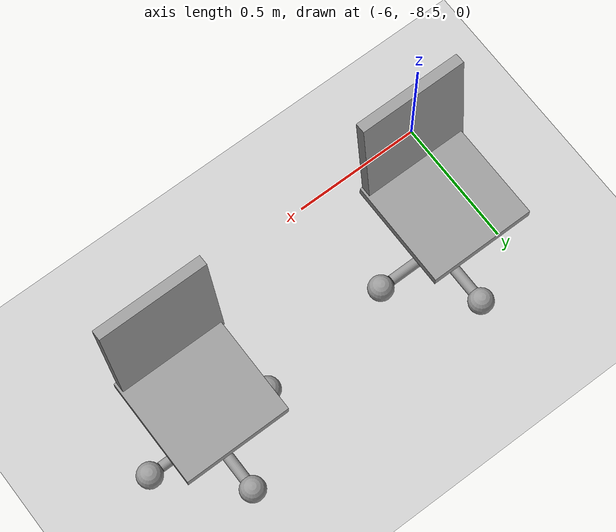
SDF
<sdf version="1.6">
 <world name="default">
  <model name="ground_plane">
   <static>1</static>
   <link name="link">
    <collision name="collision">
     <geometry><plane><normal>0 0 1</normal><size>100 100</size></plane></geometry>
     <surface><friction><ode><mu>100</mu><mu2>50</mu2></ode></friction></surface>
    </collision>
    <visual name="visual">
     <cast_shadows>0</cast_shadows>
     <geometry><plane><normal>0 0 1</normal><size>100 100</size></plane></geometry>
     <material>
      <script><uri>file://media/materials/scripts/gazebo.material</uri><name>Gazebo/Grey</name></script>
     </material>
    </visual>
   </link>
  </model>
  <model name="Sedia_0">
   <link name="link">
    <inertial>
     <mass>1</mass>
     <inertia><ixx>0.1</ixx><ixy>0</ixy><ixz>0</ixz><iyy>0.1</iyy><iyz>0</iyz><izz>0.1</izz></inertia>
     <pose>0 -0.05 0 0 -0 0</pose>
    </inertial>
    <pose>0 -0.05 0.04 0 -0 0</pose>
    <visual name="visual">
     <geometry><sphere><radius>0.0479725</radius></sphere></geometry>
     <material>
      <script><name>Gazebo/Grey</name><uri>file://media/materials/scripts/gazebo.material</uri></script>
      <shader type="vertex"><normal_map>__default__</normal_map></shader>
      <ambient>0.3 0.3 0.3 1</ambient>
      <diffuse>0.7 0.7 0.7 1</diffuse>
      <specular>0.01 0.01 0.01 1</specular>
      <emissive>0 0 0 1</emissive>
     </material>
    </visual>
    <collision name="collision">
     <geometry><sphere><radius>0.047973</radius></sphere></geometry>
     <surface>
      <friction>
       <ode><mu>1</mu><mu2>1</mu2><fdir1>0 0 0</fdir1><slip1>0</slip1><slip2>0</slip2></ode>
       <torsional>
        <coefficient>1</coefficient>
        <patch_radius>0</patch_radius>
        <surface_radius>0</surface_radius>
        <use_patch_radius>1</use_patch_radius>
        <ode><slip>0</slip></ode>
       </torsional>
      </friction>
      <bounce><restitution_coefficient>0</restitution_coefficient><threshold>1e+06</threshold></bounce>
      <contact>
       <collide_without_contact>0</collide_without_contact>
       <collide_without_contact_bitmask>1</collide_without_contact_bitmask>
       <collide_bitmask>1</collide_bitmask>
       <ode>
        <soft_cfm>0</soft_cfm>
        <soft_erp>0.2</soft_erp>
        <kp>1e+13</kp>
        <kd>1</kd>
        <max_vel>0.01</max_vel>
        <min_depth>0</min_depth>
       </ode>
       <bullet>
        <split_impulse>1</split_impulse>
        <split_impulse_penetration_threshold>-0.01</split_impulse_penetration_threshold>
        <soft_cfm>0</soft_cfm>
        <soft_erp>0.2</soft_erp>
        <kp>1e+13</kp>
        <kd>1</kd>
       </bullet>
      </contact>
     </surface>
    </collision>
   </link>
   <link name="link_0">
    <inertial>
     <mass>0.000595181</mass>
     <inertia>
      <ixx>8.34662e-06</ixx>
      <ixy>0</ixy>
      <ixz>0</ixz>
      <iyy>8.34662e-06</iyy>
      <iyz>0</iyz>
      <izz>1.11586e-07</izz>
     </inertia>
    </inertial>
    <pose>-0 0.2 0.2494 0 -0 0</pose>
    <visual name="visual">
     <geometry><cylinder><radius>0.0193636</radius><length>0.408851</length></cylinder></geometry>
     <material>
      <lighting>1</lighting>
      <script><uri>file://media/materials/scripts/gazebo.material</uri><name>Gazebo/Grey</name></script>
      <shader type="vertex"><normal_map>__default__</normal_map></shader>
      <ambient>0.3 0.3 0.3 1</ambient>
      <diffuse>0.7 0.7 0.7 1</diffuse>
      <specular>0.01 0.01 0.01 1</specular>
      <emissive>0 0 0 1</emissive>
     </material>
    </visual>
    <collision name="collision">
     <geometry><cylinder><radius>0.019364</radius><length>0.408851</length></cylinder></geometry>
     <surface>
      <friction>
       <ode><mu>1</mu><mu2>1</mu2><fdir1>0 0 0</fdir1><slip1>0</slip1><slip2>0</slip2></ode>
       <torsional>
        <coefficient>1</coefficient>
        <patch_radius>0</patch_radius>
        <surface_radius>0</surface_radius>
        <use_patch_radius>1</use_patch_radius>
        <ode><slip>0</slip></ode>
       </torsional>
      </friction>
      <bounce><restitution_coefficient>0</restitution_coefficient><threshold>1e+06</threshold></bounce>
      <contact>
       <collide_without_contact>0</collide_without_contact>
       <collide_without_contact_bitmask>1</collide_without_contact_bitmask>
       <collide_bitmask>1</collide_bitmask>
       <ode>
        <soft_cfm>0</soft_cfm>
        <soft_erp>0.2</soft_erp>
        <kp>1e+13</kp>
        <kd>1</kd>
        <max_vel>0.01</max_vel>
        <min_depth>0</min_depth>
       </ode>
       <bullet>
        <split_impulse>1</split_impulse>
        <split_impulse_penetration_threshold>-0.01</split_impulse_penetration_threshold>
        <soft_cfm>0</soft_cfm>
        <soft_erp>0.2</soft_erp>
        <kp>1e+13</kp>
        <kd>1</kd>
       </bullet>
      </contact>
     </surface>
    </collision>
   </link>
   <link name="link_0_clone">
    <inertial>
     <mass>0.000698061</mass>
     <inertia>
      <ixx>1.02332e-05</ixx>
      <ixy>0</ixy>
      <ixz>0</ixz>
      <iyy>1.02332e-05</iyy>
      <iyz>0</iyz>
      <izz>1.50251e-07</izz>
     </inertia>
    </inertial>
    <pose>0 0.2 0.04 -1.571 -0 0</pose>
    <visual name="visual">
     <geometry><cylinder><radius>0.0207471</radius><length>0.417878</length></cylinder></geometry>
     <material>
      <lighting>1</lighting>
      <script><uri>file://media/materials/scripts/gazebo.material</uri><name>Gazebo/Grey</name></script>
      <shader type="vertex"><normal_map>__default__</normal_map></shader>
      <ambient>0.3 0.3 0.3 1</ambient>
      <diffuse>0.7 0.7 0.7 1</diffuse>
      <specular>0.01 0.01 0.01 1</specular>
      <emissive>0 0 0 1</emissive>
     </material>
    </visual>
    <collision name="collision">
     <geometry><cylinder><radius>0.020748</radius><length>0.417878</length></cylinder></geometry>
     <surface>
      <friction>
       <ode><mu>1</mu><mu2>1</mu2><fdir1>0 0 0</fdir1><slip1>0</slip1><slip2>0</slip2></ode>
       <torsional>
        <coefficient>1</coefficient>
        <patch_radius>0</patch_radius>
        <surface_radius>0</surface_radius>
        <use_patch_radius>1</use_patch_radius>
        <ode><slip>0</slip></ode>
       </torsional>
      </friction>
      <bounce><restitution_coefficient>0</restitution_coefficient><threshold>1e+06</threshold></bounce>
      <contact>
       <collide_without_contact>0</collide_without_contact>
       <collide_without_contact_bitmask>1</collide_without_contact_bitmask>
       <collide_bitmask>1</collide_bitmask>
       <ode>
        <soft_cfm>0</soft_cfm>
        <soft_erp>0.2</soft_erp>
        <kp>1e+13</kp>
        <kd>1</kd>
        <max_vel>0.01</max_vel>
        <min_depth>0</min_depth>
       </ode>
       <bullet>
        <split_impulse>1</split_impulse>
        <split_impulse_penetration_threshold>-0.01</split_impulse_penetration_threshold>
        <soft_cfm>0</soft_cfm>
        <soft_erp>0.2</soft_erp>
        <kp>1e+13</kp>
        <kd>1</kd>
       </bullet>
      </contact>
     </surface>
    </collision>
   </link>
   <link name="link_0_clone_0">
    <inertial>
     <mass>0.00059327</mass>
     <inertia>
      <ixx>8.26633e-06</ixx>
      <ixy>0</ixy>
      <ixz>0</ixz>
      <iyy>8.26633e-06</iyy>
      <iyz>0</iyz>
      <izz>1.11228e-07</izz>
     </inertia>
    </inertial>
    <pose>0 0.2 0.04 0 -1.57059 0</pose>
    <visual name="visual">
     <geometry><cylinder><radius>0.0193636</radius><length>0.407525</length></cylinder></geometry>
     <material>
      <lighting>1</lighting>
      <script><uri>file://media/materials/scripts/gazebo.material</uri><name>Gazebo/Grey</name></script>
      <shader type="vertex"><normal_map>__default__</normal_map></shader>
      <ambient>0.3 0.3 0.3 1</ambient>
      <diffuse>0.7 0.7 0.7 1</diffuse>
      <specular>0.01 0.01 0.01 1</specular>
      <emissive>0 0 0 1</emissive>
     </material>
    </visual>
    <collision name="collision">
     <geometry><cylinder><radius>0.019364</radius><length>0.407525</length></cylinder></geometry>
     <surface>
      <friction>
       <ode><mu>1</mu><mu2>1</mu2><fdir1>0 0 0</fdir1><slip1>0</slip1><slip2>0</slip2></ode>
       <torsional>
        <coefficient>1</coefficient>
        <patch_radius>0</patch_radius>
        <surface_radius>0</surface_radius>
        <use_patch_radius>1</use_patch_radius>
        <ode><slip>0</slip></ode>
       </torsional>
      </friction>
      <bounce><restitution_coefficient>0</restitution_coefficient><threshold>1e+06</threshold></bounce>
      <contact>
       <collide_without_contact>0</collide_without_contact>
       <collide_without_contact_bitmask>1</collide_without_contact_bitmask>
       <collide_bitmask>1</collide_bitmask>
       <ode>
        <soft_cfm>0</soft_cfm>
        <soft_erp>0.2</soft_erp>
        <kp>1e+13</kp>
        <kd>1</kd>
        <max_vel>0.01</max_vel>
        <min_depth>0</min_depth>
       </ode>
       <bullet>
        <split_impulse>1</split_impulse>
        <split_impulse_penetration_threshold>-0.01</split_impulse_penetration_threshold>
        <soft_cfm>0</soft_cfm>
        <soft_erp>0.2</soft_erp>
        <kp>1e+13</kp>
        <kd>1</kd>
       </bullet>
      </contact>
     </surface>
    </collision>
   </link>
   <link name="link_1">
    <inertial>
     <mass>0.00616304</mass>
     <inertia>
      <ixx>8.379e-05</ixx>
      <ixy>0</ixy>
      <ixz>0</ixz>
      <iyy>8.148e-05</iyy>
      <iyz>0</iyz>
      <izz>0.00016374</izz>
     </inertia>
    </inertial>
    <pose>-0 0.2 0.48 0 -0 0</pose>
    <visual name="visual">
     <geometry><box><size>0.396445 0.402068 0.038566</size></box></geometry>
     <material>
      <lighting>1</lighting>
      <script><uri>file://media/materials/scripts/gazebo.material</uri><name>Gazebo/Grey</name></script>
      <shader type="vertex"><normal_map>__default__</normal_map></shader>
      <ambient>0.3 0.3 0.3 1</ambient>
      <diffuse>0.7 0.7 0.7 1</diffuse>
      <specular>0.01 0.01 0.01 1</specular>
      <emissive>0 0 0 1</emissive>
     </material>
    </visual>
    <collision name="collision">
     <geometry><box><size>0.396445 0.402068 0.038566</size></box></geometry>
     <surface>
      <friction>
       <ode><mu>1</mu><mu2>1</mu2><fdir1>0 0 0</fdir1><slip1>0</slip1><slip2>0</slip2></ode>
       <torsional>
        <coefficient>1</coefficient>
        <patch_radius>0</patch_radius>
        <surface_radius>0</surface_radius>
        <use_patch_radius>1</use_patch_radius>
        <ode><slip>0</slip></ode>
       </torsional>
      </friction>
      <bounce><restitution_coefficient>0</restitution_coefficient><threshold>1e+06</threshold></bounce>
      <contact>
       <collide_without_contact>0</collide_without_contact>
       <collide_without_contact_bitmask>1</collide_without_contact_bitmask>
       <collide_bitmask>1</collide_bitmask>
       <ode>
        <soft_cfm>0</soft_cfm>
        <soft_erp>0.2</soft_erp>
        <kp>1e+13</kp>
        <kd>1</kd>
        <max_vel>0.01</max_vel>
        <min_depth>0</min_depth>
       </ode>
       <bullet>
        <split_impulse>1</split_impulse>
        <split_impulse_penetration_threshold>-0.01</split_impulse_penetration_threshold>
        <soft_cfm>0</soft_cfm>
        <soft_erp>0.2</soft_erp>
        <kp>1e+13</kp>
        <kd>1</kd>
       </bullet>
      </contact>
     </surface>
    </collision>
   </link>
   <link name="link_1_clone">
    <inertial>
     <mass>0.0072018</mass>
     <inertia>
      <ixx>0.000133376</ixx>
      <ixy>0</ixy>
      <ixz>0</ixz>
      <iyy>9.52174e-05</iyy>
      <iyz>0</iyz>
      <izz>0.000226808</izz>
     </inertia>
    </inertial>
    <pose>-0.008803 -0.002064 0.701044 1.67698 -0 0</pose>
    <visual name="visual">
     <geometry><box><size>0.396445 0.46984 0.038566</size></box></geometry>
     <material>
      <lighting>1</lighting>
      <script><uri>file://media/materials/scripts/gazebo.material</uri><name>Gazebo/Grey</name></script>
      <shader type="vertex"><normal_map>__default__</normal_map></shader>
      <ambient>0.3 0.3 0.3 1</ambient>
      <diffuse>0.7 0.7 0.7 1</diffuse>
      <specular>0.01 0.01 0.01 1</specular>
      <emissive>0 0 0 1</emissive>
     </material>
    </visual>
    <collision name="collision">
     <geometry><box><size>0.396445 0.46984 0.038566</size></box></geometry>
     <surface>
      <friction>
       <ode><mu>1</mu><mu2>1</mu2><fdir1>0 0 0</fdir1><slip1>0</slip1><slip2>0</slip2></ode>
       <torsional>
        <coefficient>1</coefficient>
        <patch_radius>0</patch_radius>
        <surface_radius>0</surface_radius>
        <use_patch_radius>1</use_patch_radius>
        <ode><slip>0</slip></ode>
       </torsional>
      </friction>
      <bounce><restitution_coefficient>0</restitution_coefficient><threshold>1e+06</threshold></bounce>
      <contact>
       <collide_without_contact>0</collide_without_contact>
       <collide_without_contact_bitmask>1</collide_without_contact_bitmask>
       <collide_bitmask>1</collide_bitmask>
       <ode>
        <soft_cfm>0</soft_cfm>
        <soft_erp>0.2</soft_erp>
        <kp>1e+13</kp>
        <kd>1</kd>
        <max_vel>0.01</max_vel>
        <min_depth>0</min_depth>
       </ode>
       <bullet>
        <split_impulse>1</split_impulse>
        <split_impulse_penetration_threshold>-0.01</split_impulse_penetration_threshold>
        <soft_cfm>0</soft_cfm>
        <soft_erp>0.2</soft_erp>
        <kp>1e+13</kp>
        <kd>1</kd>
       </bullet>
      </contact>
     </surface>
    </collision>
   </link>
   <link name="link_clone">
    <inertial>
     <mass>1</mass>
     <inertia><ixx>0.1</ixx><ixy>0</ixy><ixz>0</ixz><iyy>0.1</iyy><iyz>0</iyz><izz>0.1</izz></inertia>
     <pose>0 0 0.04 0 -0 0</pose>
    </inertial>
    <pose>0.25 0.2 0.04 0 -0 0</pose>
    <visual name="visual">
     <geometry><sphere><radius>0.0479725</radius></sphere></geometry>
     <material>
      <script><name>Gazebo/Grey</name><uri>file://media/materials/scripts/gazebo.material</uri></script>
      <shader type="vertex"><normal_map>__default__</normal_map></shader>
      <ambient>0.3 0.3 0.3 1</ambient>
      <diffuse>0.7 0.7 0.7 1</diffuse>
      <specular>0.01 0.01 0.01 1</specular>
      <emissive>0 0 0 1</emissive>
     </material>
    </visual>
    <collision name="collision">
     <geometry><sphere><radius>0.047973</radius></sphere></geometry>
     <surface>
      <friction>
       <ode><mu>1</mu><mu2>1</mu2><fdir1>0 0 0</fdir1><slip1>0</slip1><slip2>0</slip2></ode>
       <torsional>
        <coefficient>1</coefficient>
        <patch_radius>0</patch_radius>
        <surface_radius>0</surface_radius>
        <use_patch_radius>1</use_patch_radius>
        <ode><slip>0</slip></ode>
       </torsional>
      </friction>
      <bounce><restitution_coefficient>0</restitution_coefficient><threshold>1e+06</threshold></bounce>
      <contact>
       <collide_without_contact>0</collide_without_contact>
       <collide_without_contact_bitmask>1</collide_without_contact_bitmask>
       <collide_bitmask>1</collide_bitmask>
       <ode>
        <soft_cfm>0</soft_cfm>
        <soft_erp>0.2</soft_erp>
        <kp>1e+13</kp>
        <kd>1</kd>
        <max_vel>0.01</max_vel>
        <min_depth>0</min_depth>
       </ode>
       <bullet>
        <split_impulse>1</split_impulse>
        <split_impulse_penetration_threshold>-0.01</split_impulse_penetration_threshold>
        <soft_cfm>0</soft_cfm>
        <soft_erp>0.2</soft_erp>
        <kp>1e+13</kp>
        <kd>1</kd>
       </bullet>
      </contact>
     </surface>
    </collision>
   </link>
   <link name="link_clone_0">
    <inertial>
     <mass>1</mass>
     <inertia><ixx>0.1</ixx><ixy>0</ixy><ixz>0</ixz><iyy>0.1</iyy><iyz>0</iyz><izz>0.1</izz></inertia>
    </inertial>
    <pose>-0 0.45 0.04 0 -0 0</pose>
    <visual name="visual">
     <geometry><sphere><radius>0.0479725</radius></sphere></geometry>
     <material>
      <script><name>Gazebo/Grey</name><uri>file://media/materials/scripts/gazebo.material</uri></script>
      <shader type="vertex"><normal_map>__default__</normal_map></shader>
      <ambient>0.3 0.3 0.3 1</ambient>
      <diffuse>0.7 0.7 0.7 1</diffuse>
      <specular>0.01 0.01 0.01 1</specular>
      <emissive>0 0 0 1</emissive>
     </material>
    </visual>
    <collision name="collision">
     <geometry><sphere><radius>0.047973</radius></sphere></geometry>
     <surface>
      <friction>
       <ode><mu>1</mu><mu2>1</mu2><fdir1>0 0 0</fdir1><slip1>0</slip1><slip2>0</slip2></ode>
       <torsional>
        <coefficient>1</coefficient>
        <patch_radius>0</patch_radius>
        <surface_radius>0</surface_radius>
        <use_patch_radius>1</use_patch_radius>
        <ode><slip>0</slip></ode>
       </torsional>
      </friction>
      <bounce><restitution_coefficient>0</restitution_coefficient><threshold>1e+06</threshold></bounce>
      <contact>
       <collide_without_contact>0</collide_without_contact>
       <collide_without_contact_bitmask>1</collide_without_contact_bitmask>
       <collide_bitmask>1</collide_bitmask>
       <ode>
        <soft_cfm>0</soft_cfm>
        <soft_erp>0.2</soft_erp>
        <kp>1e+13</kp>
        <kd>1</kd>
        <max_vel>0.01</max_vel>
        <min_depth>0</min_depth>
       </ode>
       <bullet>
        <split_impulse>1</split_impulse>
        <split_impulse_penetration_threshold>-0.01</split_impulse_penetration_threshold>
        <soft_cfm>0</soft_cfm>
        <soft_erp>0.2</soft_erp>
        <kp>1e+13</kp>
        <kd>1</kd>
       </bullet>
      </contact>
     </surface>
    </collision>
   </link>
   <link name="link_clone_1">
    <inertial>
     <mass>1</mass>
     <inertia><ixx>0.1</ixx><ixy>0</ixy><ixz>0</ixz><iyy>0.1</iyy><iyz>0</iyz><izz>0.1</izz></inertia>
    </inertial>
    <pose>-0.25 0.2 0.04 0 -0 0</pose>
    <visual name="visual">
     <geometry><sphere><radius>0.0479725</radius></sphere></geometry>
     <material>
      <script><name>Gazebo/Grey</name><uri>file://media/materials/scripts/gazebo.material</uri></script>
      <shader type="vertex"><normal_map>__default__</normal_map></shader>
      <ambient>0.3 0.3 0.3 1</ambient>
      <diffuse>0.7 0.7 0.7 1</diffuse>
      <specular>0.01 0.01 0.01 1</specular>
      <emissive>0 0 0 1</emissive>
     </material>
    </visual>
    <collision name="collision">
     <geometry><sphere><radius>0.047973</radius></sphere></geometry>
     <surface>
      <friction>
       <ode><mu>1</mu><mu2>1</mu2><fdir1>0 0 0</fdir1><slip1>0</slip1><slip2>0</slip2></ode>
       <torsional>
        <coefficient>1</coefficient>
        <patch_radius>0</patch_radius>
        <surface_radius>0</surface_radius>
        <use_patch_radius>1</use_patch_radius>
        <ode><slip>0</slip></ode>
       </torsional>
      </friction>
      <bounce><restitution_coefficient>0</restitution_coefficient><threshold>1e+06</threshold></bounce>
      <contact>
       <collide_without_contact>0</collide_without_contact>
       <collide_without_contact_bitmask>1</collide_without_contact_bitmask>
       <collide_bitmask>1</collide_bitmask>
       <ode>
        <soft_cfm>0</soft_cfm>
        <soft_erp>0.2</soft_erp>
        <kp>1e+13</kp>
        <kd>1</kd>
        <max_vel>0.01</max_vel>
        <min_depth>0</min_depth>
       </ode>
       <bullet>
        <split_impulse>1</split_impulse>
        <split_impulse_penetration_threshold>-0.01</split_impulse_penetration_threshold>
        <soft_cfm>0</soft_cfm>
        <soft_erp>0.2</soft_erp>
        <kp>1e+13</kp>
        <kd>1</kd>
       </bullet>
      </contact>
     </surface>
    </collision>
   </link>
   <joint name="link_0_clone_0_JOINT_1" type="fixed">
    <parent>link_0_clone_0</parent>
    <child>link_clone</child>
    <physics>
     <ode><limit><cfm>0</cfm><erp>0.2</erp></limit><suspension><cfm>0</cfm><erp>0.2</erp></suspension></ode>
    </physics>
   </joint>
   <joint name="link_0_clone_0_JOINT_2" type="fixed">
    <parent>link_0_clone_0</parent>
    <child>link_clone_1</child>
    <physics>
     <ode><limit><cfm>0</cfm><erp>0.2</erp></limit><suspension><cfm>0</cfm><erp>0.2</erp></suspension></ode>
    </physics>
   </joint>
   <joint name="link_0_clone_JOINT_3" type="fixed">
    <parent>link_0_clone</parent>
    <child>link_clone_0</child>
    <physics>
     <ode><limit><cfm>0</cfm><erp>0.2</erp></limit><suspension><cfm>0</cfm><erp>0.2</erp></suspension></ode>
    </physics>
   </joint>
   <joint name="link_0_clone_JOINT_4" type="fixed">
    <parent>link_0_clone</parent>
    <child>link</child>
    <physics>
     <ode><limit><cfm>0</cfm><erp>0.2</erp></limit><suspension><cfm>0</cfm><erp>0.2</erp></suspension></ode>
    </physics>
   </joint>
   <joint name="link_1_JOINT_0" type="fixed">
    <parent>link_1</parent>
    <child>link_1_clone</child>
    <physics>
     <ode><limit><cfm>0</cfm><erp>0.2</erp></limit><suspension><cfm>0</cfm><erp>0.2</erp></suspension></ode>
    </physics>
   </joint>
   <joint name="link_1_JOINT_4" type="fixed">
    <parent>link_1</parent>
    <child>link_0</child>
    <physics>
     <ode><limit><cfm>0</cfm><erp>0.2</erp></limit><suspension><cfm>0</cfm><erp>0.2</erp></suspension></ode>
    </physics>
   </joint>
   <joint name="link_JOINT_3" type="fixed">
    <parent>link</parent>
    <child>link_0</child>
    <physics>
     <ode><limit><cfm>0</cfm><erp>0.2</erp></limit><suspension><cfm>0</cfm><erp>0.2</erp></suspension></ode>
    </physics>
   </joint>
   <joint name="link_clone_0_JOINT_0" type="fixed">
    <parent>link_clone_0</parent>
    <child>link_0_LINK_FRAME_VISUAL___Y_AXIS</child>
    <physics>
     <ode><limit><cfm>0</cfm><erp>0.2</erp></limit><suspension><cfm>0</cfm><erp>0.2</erp></suspension></ode>
    </physics>
   </joint>
   <joint name="link_clone_1_JOINT_2" type="fixed">
    <parent>link_clone_1</parent>
    <child>link_0</child>
    <physics>
     <ode><limit><cfm>0</cfm><erp>0.2</erp></limit><suspension><cfm>0</cfm><erp>0.2</erp></suspension></ode>
    </physics>
   </joint>
   <joint name="link_clone_JOINT_1" type="fixed">
    <parent>link_clone</parent>
    <child>link_0</child>
    <physics>
     <ode><limit><cfm>0</cfm><erp>0.2</erp></limit><suspension><cfm>0</cfm><erp>0.2</erp></suspension></ode>
    </physics>
   </joint>
   <static>0</static>
   <pose>-5.78209 -8.28039 0.007985 0.000343 5e-06 -1e-06</pose>
  </model>
  <model name="Sedia_1">
   <link name="link">
    <inertial>
     <mass>1</mass>
     <inertia><ixx>0.1</ixx><ixy>0</ixy><ixz>0</ixz><iyy>0.1</iyy><iyz>0</iyz><izz>0.1</izz></inertia>
     <pose>0 -0.05 0 0 -0 0</pose>
    </inertial>
    <pose>0 -0.05 0.04 0 -0 0</pose>
    <visual name="visual">
     <geometry><sphere><radius>0.0479725</radius></sphere></geometry>
     <material>
      <script><name>Gazebo/Grey</name><uri>file://media/materials/scripts/gazebo.material</uri></script>
      <shader type="vertex"><normal_map>__default__</normal_map></shader>
      <ambient>0.3 0.3 0.3 1</ambient>
      <diffuse>0.7 0.7 0.7 1</diffuse>
      <specular>0.01 0.01 0.01 1</specular>
      <emissive>0 0 0 1</emissive>
     </material>
    </visual>
    <collision name="collision">
     <geometry><sphere><radius>0.047973</radius></sphere></geometry>
     <surface>
      <friction>
       <ode><mu>1</mu><mu2>1</mu2><fdir1>0 0 0</fdir1><slip1>0</slip1><slip2>0</slip2></ode>
       <torsional>
        <coefficient>1</coefficient>
        <patch_radius>0</patch_radius>
        <surface_radius>0</surface_radius>
        <use_patch_radius>1</use_patch_radius>
        <ode><slip>0</slip></ode>
       </torsional>
      </friction>
      <bounce><restitution_coefficient>0</restitution_coefficient><threshold>1e+06</threshold></bounce>
      <contact>
       <collide_without_contact>0</collide_without_contact>
       <collide_without_contact_bitmask>1</collide_without_contact_bitmask>
       <collide_bitmask>1</collide_bitmask>
       <ode>
        <soft_cfm>0</soft_cfm>
        <soft_erp>0.2</soft_erp>
        <kp>1e+13</kp>
        <kd>1</kd>
        <max_vel>0.01</max_vel>
        <min_depth>0</min_depth>
       </ode>
       <bullet>
        <split_impulse>1</split_impulse>
        <split_impulse_penetration_threshold>-0.01</split_impulse_penetration_threshold>
        <soft_cfm>0</soft_cfm>
        <soft_erp>0.2</soft_erp>
        <kp>1e+13</kp>
        <kd>1</kd>
       </bullet>
      </contact>
     </surface>
    </collision>
   </link>
   <link name="link_0">
    <inertial>
     <mass>0.000595181</mass>
     <inertia>
      <ixx>8.34662e-06</ixx>
      <ixy>0</ixy>
      <ixz>0</ixz>
      <iyy>8.34662e-06</iyy>
      <iyz>0</iyz>
      <izz>1.11586e-07</izz>
     </inertia>
    </inertial>
    <pose>-0 0.2 0.2494 0 -0 0</pose>
    <visual name="visual">
     <geometry><cylinder><radius>0.0193636</radius><length>0.408851</length></cylinder></geometry>
     <material>
      <lighting>1</lighting>
      <script><uri>file://media/materials/scripts/gazebo.material</uri><name>Gazebo/Grey</name></script>
      <shader type="vertex"><normal_map>__default__</normal_map></shader>
      <ambient>0.3 0.3 0.3 1</ambient>
      <diffuse>0.7 0.7 0.7 1</diffuse>
      <specular>0.01 0.01 0.01 1</specular>
      <emissive>0 0 0 1</emissive>
     </material>
    </visual>
    <collision name="collision">
     <geometry><cylinder><radius>0.019364</radius><length>0.408851</length></cylinder></geometry>
     <surface>
      <friction>
       <ode><mu>1</mu><mu2>1</mu2><fdir1>0 0 0</fdir1><slip1>0</slip1><slip2>0</slip2></ode>
       <torsional>
        <coefficient>1</coefficient>
        <patch_radius>0</patch_radius>
        <surface_radius>0</surface_radius>
        <use_patch_radius>1</use_patch_radius>
        <ode><slip>0</slip></ode>
       </torsional>
      </friction>
      <bounce><restitution_coefficient>0</restitution_coefficient><threshold>1e+06</threshold></bounce>
      <contact>
       <collide_without_contact>0</collide_without_contact>
       <collide_without_contact_bitmask>1</collide_without_contact_bitmask>
       <collide_bitmask>1</collide_bitmask>
       <ode>
        <soft_cfm>0</soft_cfm>
        <soft_erp>0.2</soft_erp>
        <kp>1e+13</kp>
        <kd>1</kd>
        <max_vel>0.01</max_vel>
        <min_depth>0</min_depth>
       </ode>
       <bullet>
        <split_impulse>1</split_impulse>
        <split_impulse_penetration_threshold>-0.01</split_impulse_penetration_threshold>
        <soft_cfm>0</soft_cfm>
        <soft_erp>0.2</soft_erp>
        <kp>1e+13</kp>
        <kd>1</kd>
       </bullet>
      </contact>
     </surface>
    </collision>
   </link>
   <link name="link_0_clone">
    <inertial>
     <mass>0.000698061</mass>
     <inertia>
      <ixx>1.02332e-05</ixx>
      <ixy>0</ixy>
      <ixz>0</ixz>
      <iyy>1.02332e-05</iyy>
      <iyz>0</iyz>
      <izz>1.50251e-07</izz>
     </inertia>
    </inertial>
    <pose>0 0.2 0.04 -1.571 -0 0</pose>
    <visual name="visual">
     <geometry><cylinder><radius>0.0207471</radius><length>0.417878</length></cylinder></geometry>
     <material>
      <lighting>1</lighting>
      <script><uri>file://media/materials/scripts/gazebo.material</uri><name>Gazebo/Grey</name></script>
      <shader type="vertex"><normal_map>__default__</normal_map></shader>
      <ambient>0.3 0.3 0.3 1</ambient>
      <diffuse>0.7 0.7 0.7 1</diffuse>
      <specular>0.01 0.01 0.01 1</specular>
      <emissive>0 0 0 1</emissive>
     </material>
    </visual>
    <collision name="collision">
     <geometry><cylinder><radius>0.020748</radius><length>0.417878</length></cylinder></geometry>
     <surface>
      <friction>
       <ode><mu>1</mu><mu2>1</mu2><fdir1>0 0 0</fdir1><slip1>0</slip1><slip2>0</slip2></ode>
       <torsional>
        <coefficient>1</coefficient>
        <patch_radius>0</patch_radius>
        <surface_radius>0</surface_radius>
        <use_patch_radius>1</use_patch_radius>
        <ode><slip>0</slip></ode>
       </torsional>
      </friction>
      <bounce><restitution_coefficient>0</restitution_coefficient><threshold>1e+06</threshold></bounce>
      <contact>
       <collide_without_contact>0</collide_without_contact>
       <collide_without_contact_bitmask>1</collide_without_contact_bitmask>
       <collide_bitmask>1</collide_bitmask>
       <ode>
        <soft_cfm>0</soft_cfm>
        <soft_erp>0.2</soft_erp>
        <kp>1e+13</kp>
        <kd>1</kd>
        <max_vel>0.01</max_vel>
        <min_depth>0</min_depth>
       </ode>
       <bullet>
        <split_impulse>1</split_impulse>
        <split_impulse_penetration_threshold>-0.01</split_impulse_penetration_threshold>
        <soft_cfm>0</soft_cfm>
        <soft_erp>0.2</soft_erp>
        <kp>1e+13</kp>
        <kd>1</kd>
       </bullet>
      </contact>
     </surface>
    </collision>
   </link>
   <link name="link_0_clone_0">
    <inertial>
     <mass>0.00059327</mass>
     <inertia>
      <ixx>8.26633e-06</ixx>
      <ixy>0</ixy>
      <ixz>0</ixz>
      <iyy>8.26633e-06</iyy>
      <iyz>0</iyz>
      <izz>1.11228e-07</izz>
     </inertia>
    </inertial>
    <pose>0 0.2 0.04 0 -1.57059 0</pose>
    <visual name="visual">
     <geometry><cylinder><radius>0.0193636</radius><length>0.407525</length></cylinder></geometry>
     <material>
      <lighting>1</lighting>
      <script><uri>file://media/materials/scripts/gazebo.material</uri><name>Gazebo/Grey</name></script>
      <shader type="vertex"><normal_map>__default__</normal_map></shader>
      <ambient>0.3 0.3 0.3 1</ambient>
      <diffuse>0.7 0.7 0.7 1</diffuse>
      <specular>0.01 0.01 0.01 1</specular>
      <emissive>0 0 0 1</emissive>
     </material>
    </visual>
    <collision name="collision">
     <geometry><cylinder><radius>0.019364</radius><length>0.407525</length></cylinder></geometry>
     <surface>
      <friction>
       <ode><mu>1</mu><mu2>1</mu2><fdir1>0 0 0</fdir1><slip1>0</slip1><slip2>0</slip2></ode>
       <torsional>
        <coefficient>1</coefficient>
        <patch_radius>0</patch_radius>
        <surface_radius>0</surface_radius>
        <use_patch_radius>1</use_patch_radius>
        <ode><slip>0</slip></ode>
       </torsional>
      </friction>
      <bounce><restitution_coefficient>0</restitution_coefficient><threshold>1e+06</threshold></bounce>
      <contact>
       <collide_without_contact>0</collide_without_contact>
       <collide_without_contact_bitmask>1</collide_without_contact_bitmask>
       <collide_bitmask>1</collide_bitmask>
       <ode>
        <soft_cfm>0</soft_cfm>
        <soft_erp>0.2</soft_erp>
        <kp>1e+13</kp>
        <kd>1</kd>
        <max_vel>0.01</max_vel>
        <min_depth>0</min_depth>
       </ode>
       <bullet>
        <split_impulse>1</split_impulse>
        <split_impulse_penetration_threshold>-0.01</split_impulse_penetration_threshold>
        <soft_cfm>0</soft_cfm>
        <soft_erp>0.2</soft_erp>
        <kp>1e+13</kp>
        <kd>1</kd>
       </bullet>
      </contact>
     </surface>
    </collision>
   </link>
   <link name="link_1">
    <inertial>
     <mass>0.00616304</mass>
     <inertia>
      <ixx>8.379e-05</ixx>
      <ixy>0</ixy>
      <ixz>0</ixz>
      <iyy>8.148e-05</iyy>
      <iyz>0</iyz>
      <izz>0.00016374</izz>
     </inertia>
    </inertial>
    <pose>-0 0.2 0.48 0 -0 0</pose>
    <visual name="visual">
     <geometry><box><size>0.396445 0.402068 0.038566</size></box></geometry>
     <material>
      <lighting>1</lighting>
      <script><uri>file://media/materials/scripts/gazebo.material</uri><name>Gazebo/Grey</name></script>
      <shader type="vertex"><normal_map>__default__</normal_map></shader>
      <ambient>0.3 0.3 0.3 1</ambient>
      <diffuse>0.7 0.7 0.7 1</diffuse>
      <specular>0.01 0.01 0.01 1</specular>
      <emissive>0 0 0 1</emissive>
     </material>
    </visual>
    <collision name="collision">
     <geometry><box><size>0.396445 0.402068 0.038566</size></box></geometry>
     <surface>
      <friction>
       <ode><mu>1</mu><mu2>1</mu2><fdir1>0 0 0</fdir1><slip1>0</slip1><slip2>0</slip2></ode>
       <torsional>
        <coefficient>1</coefficient>
        <patch_radius>0</patch_radius>
        <surface_radius>0</surface_radius>
        <use_patch_radius>1</use_patch_radius>
        <ode><slip>0</slip></ode>
       </torsional>
      </friction>
      <bounce><restitution_coefficient>0</restitution_coefficient><threshold>1e+06</threshold></bounce>
      <contact>
       <collide_without_contact>0</collide_without_contact>
       <collide_without_contact_bitmask>1</collide_without_contact_bitmask>
       <collide_bitmask>1</collide_bitmask>
       <ode>
        <soft_cfm>0</soft_cfm>
        <soft_erp>0.2</soft_erp>
        <kp>1e+13</kp>
        <kd>1</kd>
        <max_vel>0.01</max_vel>
        <min_depth>0</min_depth>
       </ode>
       <bullet>
        <split_impulse>1</split_impulse>
        <split_impulse_penetration_threshold>-0.01</split_impulse_penetration_threshold>
        <soft_cfm>0</soft_cfm>
        <soft_erp>0.2</soft_erp>
        <kp>1e+13</kp>
        <kd>1</kd>
       </bullet>
      </contact>
     </surface>
    </collision>
   </link>
   <link name="link_1_clone">
    <inertial>
     <mass>0.0072018</mass>
     <inertia>
      <ixx>0.000133376</ixx>
      <ixy>0</ixy>
      <ixz>0</ixz>
      <iyy>9.52174e-05</iyy>
      <iyz>0</iyz>
      <izz>0.000226808</izz>
     </inertia>
    </inertial>
    <pose>-0.008803 -0.002064 0.701044 1.67698 -0 0</pose>
    <visual name="visual">
     <geometry><box><size>0.396445 0.46984 0.038566</size></box></geometry>
     <material>
      <lighting>1</lighting>
      <script><uri>file://media/materials/scripts/gazebo.material</uri><name>Gazebo/Grey</name></script>
      <shader type="vertex"><normal_map>__default__</normal_map></shader>
      <ambient>0.3 0.3 0.3 1</ambient>
      <diffuse>0.7 0.7 0.7 1</diffuse>
      <specular>0.01 0.01 0.01 1</specular>
      <emissive>0 0 0 1</emissive>
     </material>
    </visual>
    <collision name="collision">
     <geometry><box><size>0.396445 0.46984 0.038566</size></box></geometry>
     <surface>
      <friction>
       <ode><mu>1</mu><mu2>1</mu2><fdir1>0 0 0</fdir1><slip1>0</slip1><slip2>0</slip2></ode>
       <torsional>
        <coefficient>1</coefficient>
        <patch_radius>0</patch_radius>
        <surface_radius>0</surface_radius>
        <use_patch_radius>1</use_patch_radius>
        <ode><slip>0</slip></ode>
       </torsional>
      </friction>
      <bounce><restitution_coefficient>0</restitution_coefficient><threshold>1e+06</threshold></bounce>
      <contact>
       <collide_without_contact>0</collide_without_contact>
       <collide_without_contact_bitmask>1</collide_without_contact_bitmask>
       <collide_bitmask>1</collide_bitmask>
       <ode>
        <soft_cfm>0</soft_cfm>
        <soft_erp>0.2</soft_erp>
        <kp>1e+13</kp>
        <kd>1</kd>
        <max_vel>0.01</max_vel>
        <min_depth>0</min_depth>
       </ode>
       <bullet>
        <split_impulse>1</split_impulse>
        <split_impulse_penetration_threshold>-0.01</split_impulse_penetration_threshold>
        <soft_cfm>0</soft_cfm>
        <soft_erp>0.2</soft_erp>
        <kp>1e+13</kp>
        <kd>1</kd>
       </bullet>
      </contact>
     </surface>
    </collision>
   </link>
   <link name="link_clone">
    <inertial>
     <mass>1</mass>
     <inertia><ixx>0.1</ixx><ixy>0</ixy><ixz>0</ixz><iyy>0.1</iyy><iyz>0</iyz><izz>0.1</izz></inertia>
     <pose>0 0 0.04 0 -0 0</pose>
    </inertial>
    <pose>0.25 0.2 0.04 0 -0 0</pose>
    <visual name="visual">
     <geometry><sphere><radius>0.0479725</radius></sphere></geometry>
     <material>
      <script><name>Gazebo/Grey</name><uri>file://media/materials/scripts/gazebo.material</uri></script>
      <shader type="vertex"><normal_map>__default__</normal_map></shader>
      <ambient>0.3 0.3 0.3 1</ambient>
      <diffuse>0.7 0.7 0.7 1</diffuse>
      <specular>0.01 0.01 0.01 1</specular>
      <emissive>0 0 0 1</emissive>
     </material>
    </visual>
    <collision name="collision">
     <geometry><sphere><radius>0.047973</radius></sphere></geometry>
     <surface>
      <friction>
       <ode><mu>1</mu><mu2>1</mu2><fdir1>0 0 0</fdir1><slip1>0</slip1><slip2>0</slip2></ode>
       <torsional>
        <coefficient>1</coefficient>
        <patch_radius>0</patch_radius>
        <surface_radius>0</surface_radius>
        <use_patch_radius>1</use_patch_radius>
        <ode><slip>0</slip></ode>
       </torsional>
      </friction>
      <bounce><restitution_coefficient>0</restitution_coefficient><threshold>1e+06</threshold></bounce>
      <contact>
       <collide_without_contact>0</collide_without_contact>
       <collide_without_contact_bitmask>1</collide_without_contact_bitmask>
       <collide_bitmask>1</collide_bitmask>
       <ode>
        <soft_cfm>0</soft_cfm>
        <soft_erp>0.2</soft_erp>
        <kp>1e+13</kp>
        <kd>1</kd>
        <max_vel>0.01</max_vel>
        <min_depth>0</min_depth>
       </ode>
       <bullet>
        <split_impulse>1</split_impulse>
        <split_impulse_penetration_threshold>-0.01</split_impulse_penetration_threshold>
        <soft_cfm>0</soft_cfm>
        <soft_erp>0.2</soft_erp>
        <kp>1e+13</kp>
        <kd>1</kd>
       </bullet>
      </contact>
     </surface>
    </collision>
   </link>
   <link name="link_clone_0">
    <inertial>
     <mass>1</mass>
     <inertia><ixx>0.1</ixx><ixy>0</ixy><ixz>0</ixz><iyy>0.1</iyy><iyz>0</iyz><izz>0.1</izz></inertia>
    </inertial>
    <pose>-0 0.45 0.04 0 -0 0</pose>
    <visual name="visual">
     <geometry><sphere><radius>0.0479725</radius></sphere></geometry>
     <material>
      <script><name>Gazebo/Grey</name><uri>file://media/materials/scripts/gazebo.material</uri></script>
      <shader type="vertex"><normal_map>__default__</normal_map></shader>
      <ambient>0.3 0.3 0.3 1</ambient>
      <diffuse>0.7 0.7 0.7 1</diffuse>
      <specular>0.01 0.01 0.01 1</specular>
      <emissive>0 0 0 1</emissive>
     </material>
    </visual>
    <collision name="collision">
     <geometry><sphere><radius>0.047973</radius></sphere></geometry>
     <surface>
      <friction>
       <ode><mu>1</mu><mu2>1</mu2><fdir1>0 0 0</fdir1><slip1>0</slip1><slip2>0</slip2></ode>
       <torsional>
        <coefficient>1</coefficient>
        <patch_radius>0</patch_radius>
        <surface_radius>0</surface_radius>
        <use_patch_radius>1</use_patch_radius>
        <ode><slip>0</slip></ode>
       </torsional>
      </friction>
      <bounce><restitution_coefficient>0</restitution_coefficient><threshold>1e+06</threshold></bounce>
      <contact>
       <collide_without_contact>0</collide_without_contact>
       <collide_without_contact_bitmask>1</collide_without_contact_bitmask>
       <collide_bitmask>1</collide_bitmask>
       <ode>
        <soft_cfm>0</soft_cfm>
        <soft_erp>0.2</soft_erp>
        <kp>1e+13</kp>
        <kd>1</kd>
        <max_vel>0.01</max_vel>
        <min_depth>0</min_depth>
       </ode>
       <bullet>
        <split_impulse>1</split_impulse>
        <split_impulse_penetration_threshold>-0.01</split_impulse_penetration_threshold>
        <soft_cfm>0</soft_cfm>
        <soft_erp>0.2</soft_erp>
        <kp>1e+13</kp>
        <kd>1</kd>
       </bullet>
      </contact>
     </surface>
    </collision>
   </link>
   <link name="link_clone_1">
    <inertial>
     <mass>1</mass>
     <inertia><ixx>0.1</ixx><ixy>0</ixy><ixz>0</ixz><iyy>0.1</iyy><iyz>0</iyz><izz>0.1</izz></inertia>
    </inertial>
    <pose>-0.25 0.2 0.04 0 -0 0</pose>
    <visual name="visual">
     <geometry><sphere><radius>0.0479725</radius></sphere></geometry>
     <material>
      <script><name>Gazebo/Grey</name><uri>file://media/materials/scripts/gazebo.material</uri></script>
      <shader type="vertex"><normal_map>__default__</normal_map></shader>
      <ambient>0.3 0.3 0.3 1</ambient>
      <diffuse>0.7 0.7 0.7 1</diffuse>
      <specular>0.01 0.01 0.01 1</specular>
      <emissive>0 0 0 1</emissive>
     </material>
    </visual>
    <collision name="collision">
     <geometry><sphere><radius>0.047973</radius></sphere></geometry>
     <surface>
      <friction>
       <ode><mu>1</mu><mu2>1</mu2><fdir1>0 0 0</fdir1><slip1>0</slip1><slip2>0</slip2></ode>
       <torsional>
        <coefficient>1</coefficient>
        <patch_radius>0</patch_radius>
        <surface_radius>0</surface_radius>
        <use_patch_radius>1</use_patch_radius>
        <ode><slip>0</slip></ode>
       </torsional>
      </friction>
      <bounce><restitution_coefficient>0</restitution_coefficient><threshold>1e+06</threshold></bounce>
      <contact>
       <collide_without_contact>0</collide_without_contact>
       <collide_without_contact_bitmask>1</collide_without_contact_bitmask>
       <collide_bitmask>1</collide_bitmask>
       <ode>
        <soft_cfm>0</soft_cfm>
        <soft_erp>0.2</soft_erp>
        <kp>1e+13</kp>
        <kd>1</kd>
        <max_vel>0.01</max_vel>
        <min_depth>0</min_depth>
       </ode>
       <bullet>
        <split_impulse>1</split_impulse>
        <split_impulse_penetration_threshold>-0.01</split_impulse_penetration_threshold>
        <soft_cfm>0</soft_cfm>
        <soft_erp>0.2</soft_erp>
        <kp>1e+13</kp>
        <kd>1</kd>
       </bullet>
      </contact>
     </surface>
    </collision>
   </link>
   <joint name="link_0_clone_0_JOINT_1" type="fixed">
    <parent>link_0_clone_0</parent>
    <child>link_clone</child>
    <physics>
     <ode><limit><cfm>0</cfm><erp>0.2</erp></limit><suspension><cfm>0</cfm><erp>0.2</erp></suspension></ode>
    </physics>
   </joint>
   <joint name="link_0_clone_0_JOINT_2" type="fixed">
    <parent>link_0_clone_0</parent>
    <child>link_clone_1</child>
    <physics>
     <ode><limit><cfm>0</cfm><erp>0.2</erp></limit><suspension><cfm>0</cfm><erp>0.2</erp></suspension></ode>
    </physics>
   </joint>
   <joint name="link_0_clone_JOINT_3" type="fixed">
    <parent>link_0_clone</parent>
    <child>link_clone_0</child>
    <physics>
     <ode><limit><cfm>0</cfm><erp>0.2</erp></limit><suspension><cfm>0</cfm><erp>0.2</erp></suspension></ode>
    </physics>
   </joint>
   <joint name="link_0_clone_JOINT_4" type="fixed">
    <parent>link_0_clone</parent>
    <child>link</child>
    <physics>
     <ode><limit><cfm>0</cfm><erp>0.2</erp></limit><suspension><cfm>0</cfm><erp>0.2</erp></suspension></ode>
    </physics>
   </joint>
   <joint name="link_1_JOINT_0" type="fixed">
    <parent>link_1</parent>
    <child>link_1_clone</child>
    <physics>
     <ode><limit><cfm>0</cfm><erp>0.2</erp></limit><suspension><cfm>0</cfm><erp>0.2</erp></suspension></ode>
    </physics>
   </joint>
   <joint name="link_1_JOINT_4" type="fixed">
    <parent>link_1</parent>
    <child>link_0</child>
    <physics>
     <ode><limit><cfm>0</cfm><erp>0.2</erp></limit><suspension><cfm>0</cfm><erp>0.2</erp></suspension></ode>
    </physics>
   </joint>
   <joint name="link_JOINT_3" type="fixed">
    <parent>link</parent>
    <child>link_0</child>
    <physics>
     <ode><limit><cfm>0</cfm><erp>0.2</erp></limit><suspension><cfm>0</cfm><erp>0.2</erp></suspension></ode>
    </physics>
   </joint>
   <joint name="link_clone_0_JOINT_0" type="fixed">
    <parent>link_clone_0</parent>
    <child>link_0_LINK_FRAME_VISUAL___Y_AXIS</child>
    <physics>
     <ode><limit><cfm>0</cfm><erp>0.2</erp></limit><suspension><cfm>0</cfm><erp>0.2</erp></suspension></ode>
    </physics>
   </joint>
   <joint name="link_clone_1_JOINT_2" type="fixed">
    <parent>link_clone_1</parent>
    <child>link_0</child>
    <physics>
     <ode><limit><cfm>0</cfm><erp>0.2</erp></limit><suspension><cfm>0</cfm><erp>0.2</erp></suspension></ode>
    </physics>
   </joint>
   <joint name="link_clone_JOINT_1" type="fixed">
    <parent>link_clone</parent>
    <child>link_0</child>
    <physics>
     <ode><limit><cfm>0</cfm><erp>0.2</erp></limit><suspension><cfm>0</cfm><erp>0.2</erp></suspension></ode>
    </physics>
   </joint>
   <static>0</static>
   <pose>-4.74696 -8.22499 0.007985 0.000343 5e-06 -1e-06</pose>
  </model>
 </world>
</sdf>
